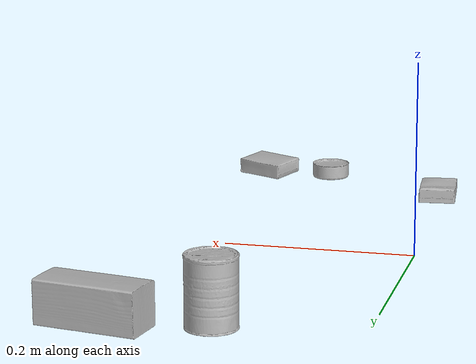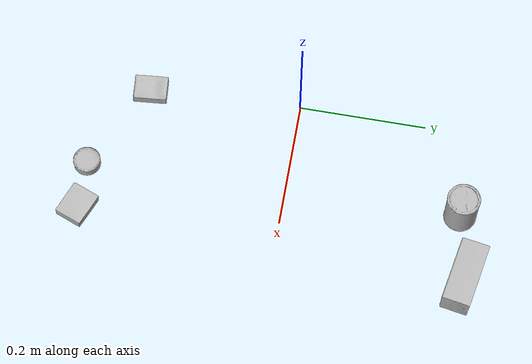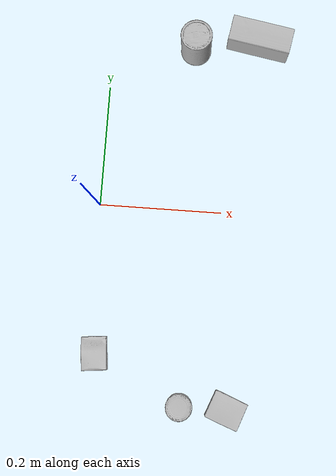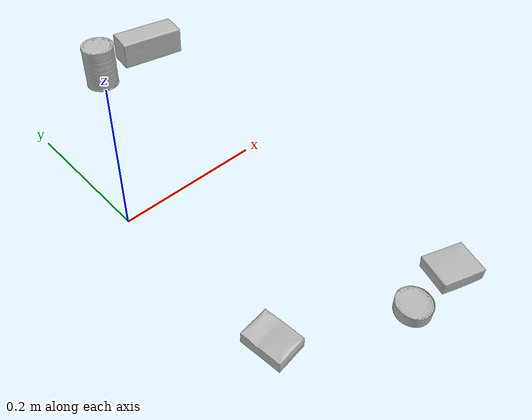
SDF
<sdf version="1.4">
  <world name="default">
    <light name="light1" type="point">
      <pose>0 0 1 0 0 0</pose>
      <diffuse>3 3 3 1</diffuse>
      <specular>3 3 3 1</specular>
    </light>
    <light name="light2" type="point">
      <pose>0 0.5 2 0 0 0</pose>
      <diffuse>1 1 1 1</diffuse>
      <specular>1 1 1 1</specular>
    </light>
    <light name="light3" type="point">
      <pose>0 0.5 2 0 0 0</pose>
      <diffuse>3 3 3 1</diffuse>
      <specular>3 3 3 1</specular>
    </light>
    <scene>
      <ambient>0.7 0.7 0.7</ambient>
    </scene>
    <model name="box1">
      <link name="link_box1">
        <collision name="default">
          <geometry>
            <mesh>
              <uri>model://pudding_box/collision_meshes/collision.obj</uri>
              <scale>0.5 0.5 0.5</scale>
            </mesh>
          </geometry>
          <surface>
            <friction>
              <ode>
                <mu>0.5</mu>
                <mu2>0.5</mu2>
              </ode>
            </friction>
          <contact>
        <ode>
            <max_vel>0</max_vel>
            <min_depth>0.0001</min_depth>
            <kp>1e8</kp>
        </ode>
    </contact></surface>
        </collision>
        <visual name="default">
          <geometry>
            <mesh>
              <uri>model://pudding_box/visual_meshes/visual.dae</uri>
              <scale>0.5 0.5 0.5</scale>
            </mesh>
          </geometry>
        </visual>
        <inertial>
          <mass>0.03999795392155647</mass>
          <pose>0.00024474109522998333 0.0004033942532259971 -0.0002594413817860186 0.005213101299265121 -0.006603799659933957 0.020079830747700592</pose>
          <inertia>
            <ixx>1.1303907e-05</ixx>
            <iyy>7.605349e-06</iyy>
            <izz>1.6693173e-05</izz>
            <ixy>0</ixy>
            <ixz>0</ixz>
            <iyz>0</iyz>
          </inertia>
        </inertial>
      </link>
      <pose>0.22738511860370636 -0.3125232756137848 0.009862901642918587 0.022348235862343444 -0.01139193153854542 -1.9371168236056302</pose>
    </model>
    <model name="box2">
      <link name="link_box2">
        <collision name="default">
          <geometry>
            <mesh>
              <uri>model://cracker_box/collision_meshes/collision.obj</uri>
              <scale>0.25 0.25 0.25</scale>
            </mesh>
          </geometry>
          <surface>
            <friction>
              <ode>
                <mu>0.5</mu>
                <mu2>0.5</mu2>
              </ode>
            </friction>
          <contact>
        <ode>
            <max_vel>0</max_vel>
            <min_depth>0.0001</min_depth>
            <kp>1e8</kp>
        </ode>
    </contact></surface>
        </collision>
        <visual name="default">
          <geometry>
            <mesh>
              <uri>model://cracker_box/visual_meshes/visual.dae</uri>
              <scale>0.25 0.25 0.25</scale>
            </mesh>
          </geometry>
        </visual>
        <inertial>
          <mass>0.046595875173807144</mass>
          <pose>0.00023660322767682374 6.358561950037256e-05 -0.0004257383698131889 -0.00031620768958073674 -0.011106491463008503 0.002546795235494827</pose>
          <inertia>
            <ixx>7.407444e-06</ixx>
            <iyy>1.2231146e-05</iyy>
            <izz>1.7454966e-05</izz>
            <ixy>0</ixy>
            <ixz>0</ixz>
            <iyz>0</iyz>
          </inertia>
        </inertial>
      </link>
      <pose>0.012638190761208534 -0.2397930771112442 0.009120450355112553 -0.011787966381476467 -0.007367130609022993 -1.4785752045262615</pose>
    </model>
    <model name="box3">
      <link name="link_box3">
        <collision name="default">
          <geometry>
            <mesh>
              <uri>model://wood_block/collision_meshes/collision.obj</uri>
              <scale>0.5 0.5 0.5</scale>
            </mesh>
          </geometry>
          <surface>
            <friction>
              <ode>
                <mu>0.5</mu>
                <mu2>0.5</mu2>
              </ode>
            </friction>
          <contact>
        <ode>
            <max_vel>0</max_vel>
            <min_depth>0.0001</min_depth>
            <kp>1e8</kp>
        </ode>
    </contact></surface>
        </collision>
        <visual name="default">
          <geometry>
            <mesh>
              <uri>model://wood_block/visual_meshes/visual.dae</uri>
              <scale>0.5 0.5 0.5</scale>
            </mesh>
          </geometry>
        </visual>
        <inertial>
          <mass>0.28600308299064636</mass>
          <pose>-2.9066577553749084e-06 -0.000285404734313488 0.00013204291462898254 -0.052207212015849935 -0.005192697210617926 -0.006861377963206113</pose>
          <inertia>
            <ixx>9.567885e-05</ixx>
            <iyy>0.00030224954</iyy>
            <izz>0.00030111894</izz>
            <ixy>0</ixy>
            <ixz>0</ixz>
            <iyz>0</iyz>
          </inertia>
        </inertial>
      </link>
      <pose>0.2452552169561386 0.29370445013046265 0.022629262879490852 -0.005208536129644152 0.005718657559315626 -0.17435432453209798</pose>
    </model>
    <model name="can1">
      <link name="link_can1">
        <collision name="default">
          <geometry>
            <mesh>
              <uri>model://master_chef_can/collision_meshes/collision.obj</uri>
              <scale>0.5 0.5 0.5</scale>
            </mesh>
          </geometry>
          <surface>
            <friction>
              <ode>
                <mu>0.5</mu>
                <mu2>0.5</mu2>
              </ode>
            </friction>
          <contact>
        <ode>
            <max_vel>0</max_vel>
            <min_depth>0.0001</min_depth>
            <kp>1e8</kp>
        </ode>
    </contact></surface>
        </collision>
        <visual name="default">
          <geometry>
            <mesh>
              <uri>model://master_chef_can/visual_meshes/visual.dae</uri>
              <scale>0.5 0.5 0.5</scale>
            </mesh>
          </geometry>
        </visual>
        <inertial>
          <mass>0.116209015250206</mass>
          <pose>-4.661964703700505e-05 1.3926850783718692e-07 -5.0799026212189347e-05 -0.001799512795725948 0.0006479254888938259 -0.6102617322721998</pose>
          <inertia>
            <ixx>6.820682e-05</ixx>
            <iyy>6.7704816e-05</iyy>
            <izz>3.768948e-05</izz>
            <ixy>0</ixy>
            <ixz>0</ixz>
            <iyz>0</iyz>
          </inertia>
        </inertial>
      </link>
      <pose>0.1400454342365265 0.2740323543548584 0.03530200198292732 -1.4204208641814148e-06 -9.621999161155804e-07 0.8103398887326269</pose>
    </model>
    <model name="can2">
      <link name="link_can2">
        <collision name="default">
          <geometry>
            <mesh>
              <uri>model://tuna_fish_can/collision_meshes/collision.obj</uri>
              <scale>0.5 0.5 0.5</scale>
            </mesh>
          </geometry>
          <surface>
            <friction>
              <ode>
                <mu>0.5</mu>
                <mu2>0.5</mu2>
              </ode>
            </friction>
          <contact>
        <ode>
            <max_vel>0</max_vel>
            <min_depth>0.0001</min_depth>
            <kp>1e8</kp>
        </ode>
    </contact></surface>
        </collision>
        <visual name="default">
          <geometry>
            <mesh>
              <uri>model://tuna_fish_can/visual_meshes/visual.dae</uri>
              <scale>0.5 0.5 0.5</scale>
            </mesh>
          </geometry>
        </visual>
        <inertial>
          <mass>0.017585277557373047</mass>
          <pose>-2.03625786525663e-05 -7.2565176196803804e-06 -0.000526902440469712 -0.0017944765250671837 0.00017163661440384507 0.24054644931605637</pose>
          <inertia>
            <ixx>2.3775558e-06</ixx>
            <iyy>2.3676464e-06</iyy>
            <izz>4.0683376e-06</izz>
            <ixy>0</ixy>
            <ixz>0</ixz>
            <iyz>0</iyz>
          </inertia>
        </inertial>
      </link>
      <pose>0.1526861935853958 -0.3133002519607544 0.008520004339516163 7.473121839931324e-09 2.097241667185285e-08 2.894666469474688</pose>
    </model>
  <physics type="ode">
      <max_contacts>50</max_contacts>
      <ode>
        <solver>
          <type>quick</type>
          <iters>75</iters>
        </solver>
        <constraints>
          <contact_max_correcting_vel>0</contact_max_correcting_vel>
          <contact_surface_layer>0</contact_surface_layer>
        </constraints>
      </ode>
    </physics></world>
</sdf>
